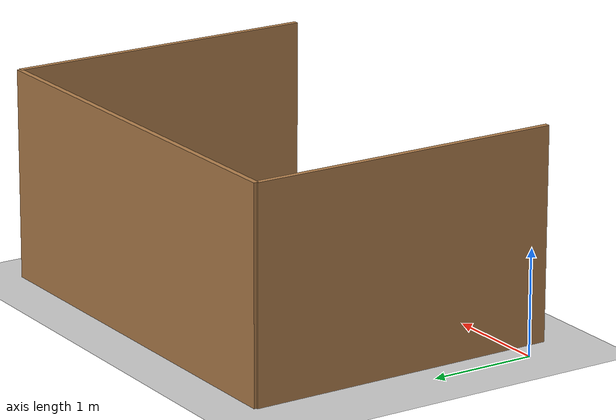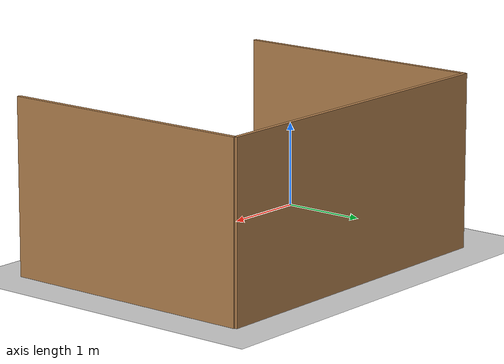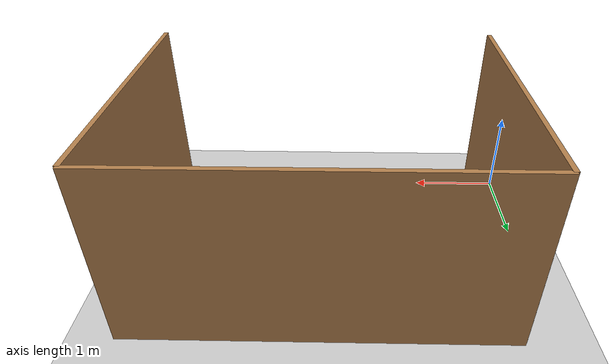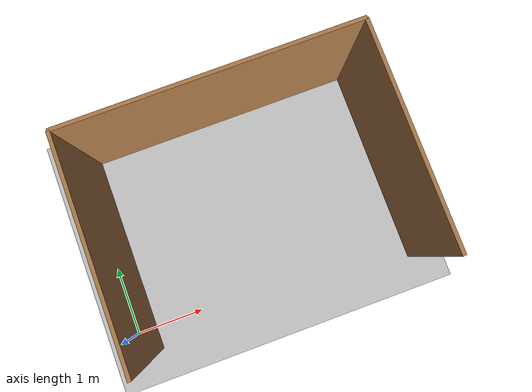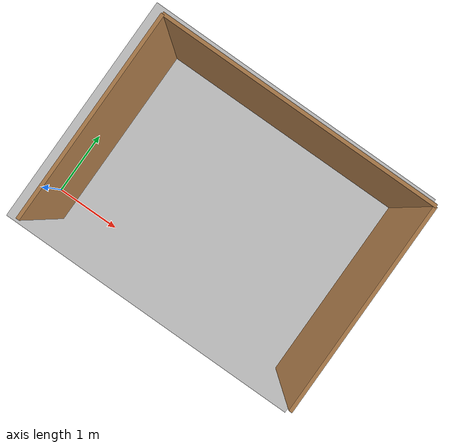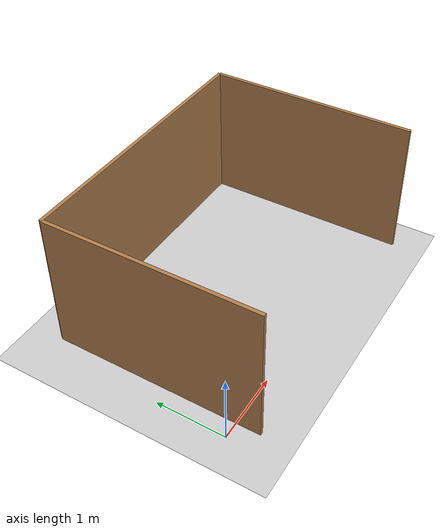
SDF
<?xml version="1.0" ?>
<sdf version="1.5">
  <world name="default">
    <!-- A global light source -->
    <include>
      <uri>model://sun</uri>
    </include>
    <!-- A ground plane -->
    <include>
      <uri>model://ground_plane</uri>
    </include>
    <include>
      <uri>model://asphalt_plane</uri>
    </include>

    <model name='walls_b'>
      <link name='Wall_0'>
        <pose frame=''>-2.9915 -0.006527 1 0 -0 1.5708</pose>
        <self_collide>0</self_collide>
        <enable_wind>0</enable_wind>
        <kinematic>0</kinematic>
        <gravity>1</gravity>
        <inertial>
          <mass>1</mass>
          <pose frame=''>0 0 0 0 -0 0</pose>
          <inertia>
            <ixx>1</ixx>
            <ixy>0</ixy>
            <ixz>0</ixz>
            <iyy>1</iyy>
            <iyz>0</iyz>
            <izz>1</izz>
          </inertia>
        </inertial>
        <visual name='Wall_0_Visual'>
          <pose frame=''>0 0 0 0 -0 0</pose>
          <geometry>
            <box>
              <size>3 0.05 2</size>
            </box>
          </geometry>
          <material>
            <script>
              <uri>file://media/materials/scripts/gazebo.material</uri>
              <name>Gazebo/Wood</name>
            </script>
            <ambient>1 1 1 1</ambient>
            <shader type='pixel'>
              <normal_map>__default__</normal_map>
            </shader>
            <diffuse>1 1 1 1</diffuse>
            <specular>0.2 0.2 0.2 1</specular>
            <emissive>0 0 0 1</emissive>
          </material>
          <meta>
            <layer>0</layer>
          </meta>
          <transparency>0</transparency>
          <cast_shadows>1</cast_shadows>
        </visual>
        <collision name='Wall_0_Collision'>
          <laser_retro>0</laser_retro>
          <max_contacts>10</max_contacts>
          <pose frame=''>0 0 0 0 -0 0</pose>
          <geometry>
            <box>
              <size>3 0.05 2</size>
            </box>
          </geometry>
          <surface>
            <friction>
              <ode>
                <mu>1</mu>
                <mu2>1</mu2>
                <fdir1>0 0 0</fdir1>
                <slip1>0</slip1>
                <slip2>0</slip2>
              </ode>
              <torsional>
                <coefficient>1</coefficient>
                <patch_radius>0</patch_radius>
                <surface_radius>0</surface_radius>
                <use_patch_radius>1</use_patch_radius>
                <ode>
                  <slip>0</slip>
                </ode>
              </torsional>
            </friction>
            <bounce>
              <restitution_coefficient>0</restitution_coefficient>
              <threshold>1e+06</threshold>
            </bounce>
            <contact>
              <collide_without_contact>0</collide_without_contact>
              <collide_without_contact_bitmask>1</collide_without_contact_bitmask>
              <collide_bitmask>1</collide_bitmask>
              <ode>
                <soft_cfm>0</soft_cfm>
                <soft_erp>0.2</soft_erp>
                <kp>1e+13</kp>
                <kd>1</kd>
                <max_vel>0.01</max_vel>
                <min_depth>0</min_depth>
              </ode>
              <bullet>
                <split_impulse>1</split_impulse>
                <split_impulse_penetration_threshold>-0.01</split_impulse_penetration_threshold>
                <soft_cfm>0</soft_cfm>
                <soft_erp>0.2</soft_erp>
                <kp>1e+13</kp>
                <kd>1</kd>
              </bullet>
            </contact>
          </surface>
        </collision>
      </link>
      <link name='Wall_11'>
        <pose frame=''>-1 1.50097 1 0 -0 0.002507</pose>
        <self_collide>0</self_collide>
        <enable_wind>0</enable_wind>
        <kinematic>0</kinematic>
        <gravity>1</gravity>
        <inertial>
          <mass>1</mass>
          <pose frame=''>0 0 0 0 -0 0</pose>
          <inertia>
            <ixx>1</ixx>
            <ixy>0</ixy>
            <ixz>0</ixz>
            <iyy>1</iyy>
            <iyz>0</iyz>
            <izz>1</izz>
          </inertia>
        </inertial>
        <visual name='Wall_11_Visual'>
          <pose frame=''>0 0 0 0 -0 0</pose>
          <geometry>
            <box>
              <size>4 0.05 2</size>
            </box>
          </geometry>
          <material>
            <script>
              <uri>file://media/materials/scripts/gazebo.material</uri>
              <name>Gazebo/Wood</name>
            </script>
            <ambient>1 1 1 1</ambient>
            <shader type='pixel'>
              <normal_map>__default__</normal_map>
            </shader>
            <diffuse>1 1 1 1</diffuse>
            <specular>0.2 0.2 0.2 1</specular>
            <emissive>0 0 0 1</emissive>
          </material>
          <meta>
            <layer>0</layer>
          </meta>
          <transparency>0</transparency>
          <cast_shadows>1</cast_shadows>
        </visual>
        <collision name='Wall_11_Collision'>
          <laser_retro>0</laser_retro>
          <max_contacts>10</max_contacts>
          <pose frame=''>0 0 0 0 -0 0</pose>
          <geometry>
            <box>
              <size>4 0.05 2</size>
            </box>
          </geometry>
          <surface>
            <friction>
              <ode>
                <mu>1</mu>
                <mu2>1</mu2>
                <fdir1>0 0 0</fdir1>
                <slip1>0</slip1>
                <slip2>0</slip2>
              </ode>
              <torsional>
                <coefficient>1</coefficient>
                <patch_radius>0</patch_radius>
                <surface_radius>0</surface_radius>
                <use_patch_radius>1</use_patch_radius>
                <ode>
                  <slip>0</slip>
                </ode>
              </torsional>
            </friction>
            <bounce>
              <restitution_coefficient>0</restitution_coefficient>
              <threshold>1e+06</threshold>
            </bounce>
            <contact>
              <collide_without_contact>0</collide_without_contact>
              <collide_without_contact_bitmask>1</collide_without_contact_bitmask>
              <collide_bitmask>1</collide_bitmask>
              <ode>
                <soft_cfm>0</soft_cfm>
                <soft_erp>0.2</soft_erp>
                <kp>1e+13</kp>
                <kd>1</kd>
                <max_vel>0.01</max_vel>
                <min_depth>0</min_depth>
              </ode>
              <bullet>
                <split_impulse>1</split_impulse>
                <split_impulse_penetration_threshold>-0.01</split_impulse_penetration_threshold>
                <soft_cfm>0</soft_cfm>
                <soft_erp>0.2</soft_erp>
                <kp>1e+13</kp>
                <kd>1</kd>
              </bullet>
            </contact>
          </surface>
        </collision>
      </link>
      <link name='Wall_2'>
        <pose frame=''>0.9915 -2.7e-05 1 0 -0 1.5708</pose>
        <self_collide>0</self_collide>
        <enable_wind>0</enable_wind>
        <kinematic>0</kinematic>
        <gravity>1</gravity>
        <inertial>
          <mass>1</mass>
          <pose frame=''>0 0 0 0 -0 0</pose>
          <inertia>
            <ixx>1</ixx>
            <ixy>0</ixy>
            <ixz>0</ixz>
            <iyy>1</iyy>
            <iyz>0</iyz>
            <izz>1</izz>
          </inertia>
        </inertial>
        <visual name='Wall_2_Visual'>
          <pose frame=''>0 0 0 0 -0 0</pose>
          <geometry>
            <box>
              <size>3 0.05 2</size>
            </box>
          </geometry>
          <material>
            <script>
              <uri>file://media/materials/scripts/gazebo.material</uri>
              <name>Gazebo/Wood</name>
            </script>
            <ambient>1 1 1 1</ambient>
            <shader type='pixel'>
              <normal_map>__default__</normal_map>
            </shader>
            <diffuse>1 1 1 1</diffuse>
            <specular>0.2 0.2 0.2 1</specular>
            <emissive>0 0 0 1</emissive>
          </material>
          <meta>
            <layer>0</layer>
          </meta>
          <transparency>0</transparency>
          <cast_shadows>1</cast_shadows>
        </visual>
        <collision name='Wall_2_Collision'>
          <laser_retro>0</laser_retro>
          <max_contacts>10</max_contacts>
          <pose frame=''>0 0 0 0 -0 0</pose>
          <geometry>
            <box>
              <size>3 0.05 2</size>
            </box>
          </geometry>
          <surface>
            <friction>
              <ode>
                <mu>1</mu>
                <mu2>1</mu2>
                <fdir1>0 0 0</fdir1>
                <slip1>0</slip1>
                <slip2>0</slip2>
              </ode>
              <torsional>
                <coefficient>1</coefficient>
                <patch_radius>0</patch_radius>
                <surface_radius>0</surface_radius>
                <use_patch_radius>1</use_patch_radius>
                <ode>
                  <slip>0</slip>
                </ode>
              </torsional>
            </friction>
            <bounce>
              <restitution_coefficient>0</restitution_coefficient>
              <threshold>1e+06</threshold>
            </bounce>
            <contact>
              <collide_without_contact>0</collide_without_contact>
              <collide_without_contact_bitmask>1</collide_without_contact_bitmask>
              <collide_bitmask>1</collide_bitmask>
              <ode>
                <soft_cfm>0</soft_cfm>
                <soft_erp>0.2</soft_erp>
                <kp>1e+13</kp>
                <kd>1</kd>
                <max_vel>0.01</max_vel>
                <min_depth>0</min_depth>
              </ode>
              <bullet>
                <split_impulse>1</split_impulse>
                <split_impulse_penetration_threshold>-0.01</split_impulse_penetration_threshold>
                <soft_cfm>0</soft_cfm>
                <soft_erp>0.2</soft_erp>
                <kp>1e+13</kp>
                <kd>1</kd>
              </bullet>
            </contact>
          </surface>
        </collision>
      </link>
      <static>1</static>
      <allow_auto_disable>1</allow_auto_disable>
      <pose frame=''>3.24849 1.1706 0 0 -0 0</pose>
    </model>

    <!-- Only one ROS interface plugin is required per world, as any other plugin can connect a Gazebo
         topic to a ROS topic (or vise versa). -->
    <plugin name="ros_interface_plugin" filename="librotors_gazebo_ros_interface_plugin.so"/>

    <physics name='default_physics' default='0' type='ode'>
      <gravity>0 0 -9.8066</gravity>
      <ode>
        <solver>
          <type>quick</type>
          <iters>10</iters>
          <sor>1.3</sor>
          <use_dynamic_moi_rescaling>0</use_dynamic_moi_rescaling>
        </solver>
        <constraints>
          <cfm>0</cfm>
          <erp>0.2</erp>
          <contact_max_correcting_vel>100</contact_max_correcting_vel>
          <contact_surface_layer>0.001</contact_surface_layer>
        </constraints>
      </ode>
      <max_step_size>0.002</max_step_size>
      <real_time_factor>1</real_time_factor>
      <real_time_update_rate>500</real_time_update_rate>
      <magnetic_field>6e-06 2.3e-05 -4.2e-05</magnetic_field>
    </physics>
  </world>
</sdf>
